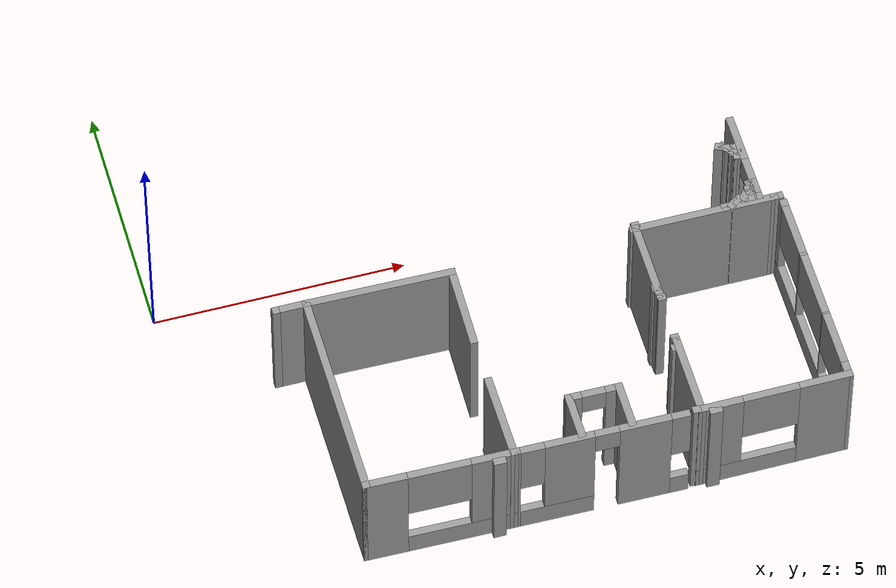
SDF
<sdf version="1.6">
 <model name="draft2">
  <pose>6.97389 -0.64018 0 0 -0 0</pose>
  <link name="Wall_0">
   <collision name="Wall_0_Collision">
    <geometry><box><size>4.40748 0.15 2.5</size></box></geometry>
    <pose>0 0 1.25 0 -0 0</pose>
   </collision>
   <visual name="Wall_0_Visual">
    <pose>0 0 1.25 0 -0 0</pose>
    <geometry><box><size>4.40748 0.15 2.5</size></box></geometry>
    <material>
     <script><uri>file://media/materials/scripts/gazebo.material</uri><name>Gazebo/Grey</name></script>
     <ambient>1 1 1 1</ambient>
    </material>
   </visual>
   <pose>-4.43924 -3.52153 0 0 0 -1.5708</pose>
  </link>
  <link name="Wall_1">
   <collision name="Wall_1_Collision">
    <geometry><box><size>0.15 0.15 2.5</size></box></geometry>
    <pose>0 0 1.25 0 -0 0</pose>
   </collision>
   <visual name="Wall_1_Visual">
    <pose>0 0 1.25 0 -0 0</pose>
    <geometry><box><size>0.15 0.15 2.5</size></box></geometry>
    <material>
     <script><uri>file://media/materials/scripts/gazebo.material</uri><name>Gazebo/Grey</name></script>
     <ambient>1 1 1 1</ambient>
    </material>
   </visual>
   <pose>-4.43924 -5.65027 0 0 -0 0</pose>
  </link>
  <link name="Wall_161">
   <pose>4.53962 -0.402141 0 0 0 -1.5708</pose>
   <visual name="Wall_161_Visual_0">
    <pose>-0.491085 0 1.25 0 -0 0</pose>
    <geometry><box><size>1.01783 0.15 2.5</size></box></geometry>
    <material>
     <script><uri>file://media/materials/scripts/gazebo.material</uri><name>Gazebo/Grey</name></script>
     <ambient>1 1 1 1</ambient>
    </material>
   </visual>
   <collision name="Wall_161_Collision_0">
    <geometry><box><size>1.01783 0.15 2.5</size></box></geometry>
    <pose>-0.491085 0 1.25 0 -0 0</pose>
   </collision>
   <visual name="Wall_161_Visual_1">
    <pose>0.758915 0 1.25 0 -0 0</pose>
    <geometry><box><size>0.482171 0.15 2.5</size></box></geometry>
    <material>
     <script><uri>file://media/materials/scripts/gazebo.material</uri><name>Gazebo/Grey</name></script>
     <ambient>1 1 1 1</ambient>
    </material>
   </visual>
   <collision name="Wall_161_Collision_1">
    <geometry><box><size>0.482171 0.15 2.5</size></box></geometry>
    <pose>0.758915 0 1.25 0 -0 0</pose>
   </collision>
   <visual name="Wall_161_Visual_2">
    <pose>0.267829 0 2.25 0 -0 0</pose>
    <geometry><box><size>0.5 0.15 0.5</size></box></geometry>
    <material>
     <script><uri>file://media/materials/scripts/gazebo.material</uri><name>Gazebo/Grey</name></script>
     <ambient>1 1 1 1</ambient>
    </material>
   </visual>
   <collision name="Wall_161_Collision_2">
    <geometry><box><size>0.5 0.15 0.5</size></box></geometry>
    <pose>0.267829 0 2.25 0 -0 0</pose>
   </collision>
  </link>
  <link name="Wall_181">
   <collision name="Wall_181_Collision">
    <geometry><box><size>2.91441 0.15 2.5</size></box></geometry>
    <pose>0 0 1.25 0 -0 0</pose>
   </collision>
   <visual name="Wall_181_Visual">
    <pose>0 0 1.25 0 -0 0</pose>
    <geometry><box><size>2.91441 0.15 2.5</size></box></geometry>
    <material>
     <script><uri>file://media/materials/scripts/gazebo.material</uri><name>Gazebo/Grey</name></script>
     <ambient>1 1 1 1</ambient>
    </material>
   </visual>
   <pose>3.43915 -1.42355 0 0 0 -0.002132</pose>
  </link>
  <link name="Wall_182">
   <collision name="Wall_182_Collision">
    <geometry><box><size>0.25 0.15 2.5</size></box></geometry>
    <pose>0 0 1.25 0 -0 0</pose>
   </collision>
   <visual name="Wall_182_Visual">
    <pose>0 0 1.25 0 -0 0</pose>
    <geometry><box><size>0.25 0.15 2.5</size></box></geometry>
    <material>
     <script><uri>file://media/materials/scripts/gazebo.material</uri><name>Gazebo/Grey</name></script>
     <ambient>1 1 1 1</ambient>
    </material>
   </visual>
   <pose>4.87133 -1.42649 0 0 -0 0</pose>
  </link>
  <link name="Wall_2">
   <pose>-3.01424 -5.6734 0 0 0 -0.016231</pose>
   <visual name="Wall_2_Visual_0">
    <pose>-1.06421 0 1.25 0 -0 0</pose>
    <geometry><box><size>0.871947 0.15 2.5</size></box></geometry>
    <material>
     <script><uri>file://media/materials/scripts/gazebo.material</uri><name>Gazebo/Grey</name></script>
     <ambient>1 1 1 1</ambient>
    </material>
   </visual>
   <collision name="Wall_2_Collision_0">
    <geometry><box><size>0.871947 0.15 2.5</size></box></geometry>
    <pose>-1.06421 0 1.25 0 -0 0</pose>
   </collision>
   <visual name="Wall_2_Visual_1">
    <pose>0.435973 0 0.25 0 -0 0</pose>
    <geometry><box><size>2.12843 0.15 0.5</size></box></geometry>
    <material>
     <script><uri>file://media/materials/scripts/gazebo.material</uri><name>Gazebo/Grey</name></script>
     <ambient>1 1 1 1</ambient>
    </material>
   </visual>
   <collision name="Wall_2_Collision_1">
    <geometry><box><size>2.12843 0.15 0.5</size></box></geometry>
    <pose>0.435973 0 0.25 0 -0 0</pose>
   </collision>
   <visual name="Wall_2_Visual_2">
    <pose>1.05011 0 1.5 0 -0 0</pose>
    <geometry><box><size>0.900165 0.15 2</size></box></geometry>
    <material>
     <script><uri>file://media/materials/scripts/gazebo.material</uri><name>Gazebo/Grey</name></script>
     <ambient>1 1 1 1</ambient>
    </material>
   </visual>
   <collision name="Wall_2_Collision_2">
    <geometry><box><size>0.900165 0.15 2</size></box></geometry>
    <pose>1.05011 0 1.5 0 -0 0</pose>
   </collision>
   <visual name="Wall_2_Visual_3">
    <pose>-0.014109 0 1.9 0 -0 0</pose>
    <geometry><box><size>1.22826 0.15 1.2</size></box></geometry>
    <material>
     <script><uri>file://media/materials/scripts/gazebo.material</uri><name>Gazebo/Grey</name></script>
     <ambient>1 1 1 1</ambient>
    </material>
   </visual>
   <collision name="Wall_2_Collision_3">
    <geometry><box><size>1.22826 0.15 1.2</size></box></geometry>
    <pose>-0.014109 0 1.9 0 -0 0</pose>
   </collision>
  </link>
  <link name="Wall_200">
   <collision name="Wall_200_Collision">
    <geometry><box><size>0.440291 0.15 2.5</size></box></geometry>
    <pose>0 0 1.25 0 -0 0</pose>
   </collision>
   <visual name="Wall_200_Visual">
    <pose>0 0 1.25 0 -0 0</pose>
    <geometry><box><size>0.440291 0.15 2.5</size></box></geometry>
    <material>
     <script><uri>file://media/materials/scripts/gazebo.material</uri><name>Gazebo/Grey</name></script>
     <ambient>1 1 1 1</ambient>
    </material>
   </visual>
   <pose>4.39461 -1.32899 0 0 0 -3.12884</pose>
  </link>
  <link name="Wall_201">
   <collision name="Wall_201_Collision">
    <geometry><box><size>0.193478 0.15 2.5</size></box></geometry>
    <pose>0 0 1.25 0 -0 0</pose>
   </collision>
   <visual name="Wall_201_Visual">
    <pose>0 0 1.25 0 -0 0</pose>
    <geometry><box><size>0.193478 0.15 2.5</size></box></geometry>
    <material>
     <script><uri>file://media/materials/scripts/gazebo.material</uri><name>Gazebo/Grey</name></script>
     <ambient>1 1 1 1</ambient>
    </material>
   </visual>
   <pose>4.24959 -1.3091 0 0 -0 1.5708</pose>
  </link>
  <link name="Wall_202">
   <collision name="Wall_202_Collision">
    <geometry><box><size>0.266988 0.15 2.5</size></box></geometry>
    <pose>0 0 1.25 0 -0 0</pose>
   </collision>
   <visual name="Wall_202_Visual">
    <pose>0 0 1.25 0 -0 0</pose>
    <geometry><box><size>0.266988 0.15 2.5</size></box></geometry>
    <material>
     <script><uri>file://media/materials/scripts/gazebo.material</uri><name>Gazebo/Grey</name></script>
     <ambient>1 1 1 1</ambient>
    </material>
   </visual>
   <pose>4.28872 -1.24388 0 0 -0 0.837981</pose>
  </link>
  <link name="Wall_203">
   <collision name="Wall_203_Collision">
    <geometry><box><size>0.202894 0.15 2.5</size></box></geometry>
    <pose>0 0 1.25 0 -0 0</pose>
   </collision>
   <visual name="Wall_203_Visual">
    <pose>0 0 1.25 0 -0 0</pose>
    <geometry><box><size>0.202894 0.15 2.5</size></box></geometry>
    <material>
     <script><uri>file://media/materials/scripts/gazebo.material</uri><name>Gazebo/Grey</name></script>
     <ambient>1 1 1 1</ambient>
    </material>
   </visual>
   <pose>4.35394 -1.20475 0 0 0 -0.165149</pose>
  </link>
  <link name="Wall_204">
   <collision name="Wall_204_Collision">
    <geometry><box><size>0.202174 0.15 2.5</size></box></geometry>
    <pose>0 0 1.25 0 -0 0</pose>
   </collision>
   <visual name="Wall_204_Visual">
    <pose>0 0 1.25 0 -0 0</pose>
    <geometry><box><size>0.202174 0.15 2.5</size></box></geometry>
    <material>
     <script><uri>file://media/materials/scripts/gazebo.material</uri><name>Gazebo/Grey</name></script>
     <ambient>1 1 1 1</ambient>
    </material>
   </visual>
   <pose>4.40611 -1.2091 0 0 -0 0</pose>
  </link>
  <link name="Wall_205">
   <collision name="Wall_205_Collision">
    <geometry><box><size>0.245652 0.15 2.5</size></box></geometry>
    <pose>0 0 1.25 0 -0 0</pose>
   </collision>
   <visual name="Wall_205_Visual">
    <pose>0 0 1.25 0 -0 0</pose>
    <geometry><box><size>0.245652 0.15 2.5</size></box></geometry>
    <material>
     <script><uri>file://media/materials/scripts/gazebo.material</uri><name>Gazebo/Grey</name></script>
     <ambient>1 1 1 1</ambient>
    </material>
   </visual>
   <pose>4.4322 -1.16127 0 0 -0 1.5708</pose>
  </link>
  <link name="Wall_206">
   <collision name="Wall_206_Collision">
    <geometry><box><size>0.184783 0.15 2.5</size></box></geometry>
    <pose>0 0 1.25 0 -0 0</pose>
   </collision>
   <visual name="Wall_206_Visual">
    <pose>0 0 1.25 0 -0 0</pose>
    <geometry><box><size>0.184783 0.15 2.5</size></box></geometry>
    <material>
     <script><uri>file://media/materials/scripts/gazebo.material</uri><name>Gazebo/Grey</name></script>
     <ambient>1 1 1 1</ambient>
    </material>
   </visual>
   <pose>4.41481 -1.11345 0 0 -0 3.14159</pose>
  </link>
  <link name="Wall_207">
   <collision name="Wall_207_Collision">
    <geometry><box><size>0.217915 0.15 2.5</size></box></geometry>
    <pose>0 0 1.25 0 -0 0</pose>
   </collision>
   <visual name="Wall_207_Visual">
    <pose>0 0 1.25 0 -0 0</pose>
    <geometry><box><size>0.217915 0.15 2.5</size></box></geometry>
    <material>
     <script><uri>file://media/materials/scripts/gazebo.material</uri><name>Gazebo/Grey</name></script>
     <ambient>1 1 1 1</ambient>
    </material>
   </visual>
   <pose>4.41916 -1.08736 0 0 -0 0.876058</pose>
  </link>
  <link name="Wall_208">
   <collision name="Wall_208_Collision">
    <geometry><box><size>0.21087 0.15 2.5</size></box></geometry>
    <pose>0 0 1.25 0 -0 0</pose>
   </collision>
   <visual name="Wall_208_Visual">
    <pose>0 0 1.25 0 -0 0</pose>
    <geometry><box><size>0.21087 0.15 2.5</size></box></geometry>
    <material>
     <script><uri>file://media/materials/scripts/gazebo.material</uri><name>Gazebo/Grey</name></script>
     <ambient>1 1 1 1</ambient>
    </material>
   </visual>
   <pose>4.4409 -1.03084 0 0 -0 1.5708</pose>
  </link>
  <link name="Wall_210">
   <collision name="Wall_210_Collision">
    <geometry><box><size>0.244058 0.15 2.5</size></box></geometry>
    <pose>0 0 1.25 0 -0 0</pose>
   </collision>
   <visual name="Wall_210_Visual">
    <pose>0 0 1.25 0 -0 0</pose>
    <geometry><box><size>0.244058 0.15 2.5</size></box></geometry>
    <material>
     <script><uri>file://media/materials/scripts/gazebo.material</uri><name>Gazebo/Grey</name></script>
     <ambient>1 1 1 1</ambient>
    </material>
   </visual>
   <pose>4.11481 -1.31345 0 0 0 -2.55359</pose>
  </link>
  <link name="Wall_211">
   <collision name="Wall_211_Collision">
    <geometry><box><size>0.263377 0.15 2.5</size></box></geometry>
    <pose>0 0 1.25 0 -0 0</pose>
   </collision>
   <visual name="Wall_211_Visual">
    <pose>0 0 1.25 0 -0 0</pose>
    <geometry><box><size>0.263377 0.15 2.5</size></box></geometry>
    <material>
     <script><uri>file://media/materials/scripts/gazebo.material</uri><name>Gazebo/Grey</name></script>
     <ambient>1 1 1 1</ambient>
    </material>
   </visual>
   <pose>4.02785 -1.36997 0 0 0 -2.57486</pose>
  </link>
  <link name="Wall_212">
   <collision name="Wall_212_Collision">
    <geometry><box><size>0.28913 0.15 2.5</size></box></geometry>
    <pose>0 0 1.25 0 -0 0</pose>
   </collision>
   <visual name="Wall_212_Visual">
    <pose>0 0 1.25 0 -0 0</pose>
    <geometry><box><size>0.28913 0.15 2.5</size></box></geometry>
    <material>
     <script><uri>file://media/materials/scripts/gazebo.material</uri><name>Gazebo/Grey</name></script>
     <ambient>1 1 1 1</ambient>
    </material>
   </visual>
   <pose>3.91046 -1.4004 0 0 -0 3.14159</pose>
  </link>
  <link name="Wall_215">
   <collision name="Wall_215_Collision">
    <geometry><box><size>0.236957 0.15 2.5</size></box></geometry>
    <pose>0 0 1.25 0 -0 0</pose>
   </collision>
   <visual name="Wall_215_Visual">
    <pose>0 0 1.25 0 -0 0</pose>
    <geometry><box><size>0.236957 0.15 2.5</size></box></geometry>
    <material>
     <script><uri>file://media/materials/scripts/gazebo.material</uri><name>Gazebo/Grey</name></script>
     <ambient>1 1 1 1</ambient>
    </material>
   </visual>
   <pose>4.2409 -0.043883 0 0 0 -0.927295</pose>
  </link>
  <link name="Wall_216">
   <collision name="Wall_216_Collision">
    <geometry><box><size>0.16 0.15 2.5</size></box></geometry>
    <pose>0 0 1.25 0 -0 0</pose>
   </collision>
   <visual name="Wall_216_Visual">
    <pose>0 0 1.25 0 -0 0</pose>
    <geometry><box><size>0.16 0.15 2.5</size></box></geometry>
    <material>
     <script><uri>file://media/materials/scripts/gazebo.material</uri><name>Gazebo/Grey</name></script>
     <ambient>1 1 1 1</ambient>
    </material>
   </visual>
   <pose>4.27198 -0.078666 0 0 -0 0</pose>
  </link>
  <link name="Wall_217">
   <collision name="Wall_217_Collision">
    <geometry><box><size>0.30672 0.15 2.5</size></box></geometry>
    <pose>0 0 1.25 0 -0 0</pose>
   </collision>
   <visual name="Wall_217_Visual">
    <pose>0 0 1.25 0 -0 0</pose>
    <geometry><box><size>0.30672 0.15 2.5</size></box></geometry>
    <material>
     <script><uri>file://media/materials/scripts/gazebo.material</uri><name>Gazebo/Grey</name></script>
     <ambient>1 1 1 1</ambient>
    </material>
   </visual>
   <pose>4.20677 -0.043883 0 0 -0 2.68167</pose>
  </link>
  <link name="Wall_221">
   <collision name="Wall_221_Collision">
    <geometry><box><size>0.186893 0.15 2.5</size></box></geometry>
    <pose>0 0 1.25 0 -0 0</pose>
   </collision>
   <visual name="Wall_221_Visual">
    <pose>0 0 1.25 0 -0 0</pose>
    <geometry><box><size>0.186893 0.15 2.5</size></box></geometry>
    <material>
     <script><uri>file://media/materials/scripts/gazebo.material</uri><name>Gazebo/Grey</name></script>
     <ambient>1 1 1 1</ambient>
    </material>
   </visual>
   <pose>4.3235 -0.152579 0 0 0 -0.785398</pose>
  </link>
  <link name="Wall_222">
   <collision name="Wall_222_Collision">
    <geometry><box><size>0.208332 0.15 2.5</size></box></geometry>
    <pose>0 0 1.25 0 -0 0</pose>
   </collision>
   <visual name="Wall_222_Visual">
    <pose>0 0 1.25 0 -0 0</pose>
    <geometry><box><size>0.208332 0.15 2.5</size></box></geometry>
    <material>
     <script><uri>file://media/materials/scripts/gazebo.material</uri><name>Gazebo/Grey</name></script>
     <ambient>1 1 1 1</ambient>
    </material>
   </visual>
   <pose>4.34959 -0.191709 0 0 0 -1.10715</pose>
  </link>
  <link name="Wall_223">
   <collision name="Wall_223_Collision">
    <geometry><box><size>0.238679 0.15 2.5</size></box></geometry>
    <pose>0 0 1.25 0 -0 0</pose>
   </collision>
   <visual name="Wall_223_Visual">
    <pose>0 0 1.25 0 -0 0</pose>
    <geometry><box><size>0.238679 0.15 2.5</size></box></geometry>
    <material>
     <script><uri>file://media/materials/scripts/gazebo.material</uri><name>Gazebo/Grey</name></script>
     <ambient>1 1 1 1</ambient>
    </material>
   </visual>
   <pose>4.40611 -0.226492 0 0 0 -0.197396</pose>
  </link>
  <link name="Wall_224">
   <collision name="Wall_224_Collision">
    <geometry><box><size>0.232494 0.15 2.5</size></box></geometry>
    <pose>0 0 1.25 0 -0 0</pose>
   </collision>
   <visual name="Wall_224_Visual">
    <pose>0 0 1.25 0 -0 0</pose>
    <geometry><box><size>0.232494 0.15 2.5</size></box></geometry>
    <material>
     <script><uri>file://media/materials/scripts/gazebo.material</uri><name>Gazebo/Grey</name></script>
     <ambient>1 1 1 1</ambient>
    </material>
   </visual>
   <pose>4.43655 -0.274318 0 0 0 -1.89255</pose>
  </link>
  <link name="Wall_225">
   <collision name="Wall_225_Collision">
    <geometry><box><size>0.358877 0.15 2.5</size></box></geometry>
    <pose>0 0 1.25 0 -0 0</pose>
   </collision>
   <visual name="Wall_225_Visual">
    <pose>0 0 1.25 0 -0 0</pose>
    <geometry><box><size>0.358877 0.15 2.5</size></box></geometry>
    <material>
     <script><uri>file://media/materials/scripts/gazebo.material</uri><name>Gazebo/Grey</name></script>
     <ambient>1 1 1 1</ambient>
    </material>
   </visual>
   <pose>4.42785 -0.2091 0 0 -0 1.52915</pose>
  </link>
  <link name="Wall_259">
   <pose>4.95498 -3.6601 0 0 -0 1.5708</pose>
   <visual name="Wall_259_Visual_0">
    <pose>-1.94718 0 1.25 0 -0 0</pose>
    <geometry><box><size>0.355647 0.15 2.5</size></box></geometry>
    <material>
     <script><uri>file://media/materials/scripts/gazebo.material</uri><name>Gazebo/Grey</name></script>
     <ambient>1 1 1 1</ambient>
    </material>
   </visual>
   <collision name="Wall_259_Collision_0">
    <geometry><box><size>0.355647 0.15 2.5</size></box></geometry>
    <pose>-1.94718 0 1.25 0 -0 0</pose>
   </collision>
   <visual name="Wall_259_Visual_1">
    <pose>0.177824 0 0.25 0 -0 0</pose>
    <geometry><box><size>3.89435 0.15 0.5</size></box></geometry>
    <material>
     <script><uri>file://media/materials/scripts/gazebo.material</uri><name>Gazebo/Grey</name></script>
     <ambient>1 1 1 1</ambient>
    </material>
   </visual>
   <collision name="Wall_259_Collision_1">
    <geometry><box><size>3.89435 0.15 0.5</size></box></geometry>
    <pose>0.177824 0 0.25 0 -0 0</pose>
   </collision>
   <visual name="Wall_259_Visual_2">
    <pose>-0.607734 0 1.5 0 -0 0</pose>
    <geometry><box><size>0.035537 0.15 2</size></box></geometry>
    <material>
     <script><uri>file://media/materials/scripts/gazebo.material</uri><name>Gazebo/Grey</name></script>
     <ambient>1 1 1 1</ambient>
    </material>
   </visual>
   <collision name="Wall_259_Collision_2">
    <geometry><box><size>0.035537 0.15 2</size></box></geometry>
    <pose>-0.607734 0 1.5 0 -0 0</pose>
   </collision>
   <visual name="Wall_259_Visual_3">
    <pose>0.804784 0 1.5 0 -0 0</pose>
    <geometry><box><size>0.0625 0.15 2</size></box></geometry>
    <material>
     <script><uri>file://media/materials/scripts/gazebo.material</uri><name>Gazebo/Grey</name></script>
     <ambient>1 1 1 1</ambient>
    </material>
   </visual>
   <collision name="Wall_259_Collision_3">
    <geometry><box><size>0.0625 0.15 2</size></box></geometry>
    <pose>0.804784 0 1.5 0 -0 0</pose>
   </collision>
   <visual name="Wall_259_Visual_4">
    <pose>2.04152 0 1.5 0 -0 0</pose>
    <geometry><box><size>0.166966 0.15 2</size></box></geometry>
    <material>
     <script><uri>file://media/materials/scripts/gazebo.material</uri><name>Gazebo/Grey</name></script>
     <ambient>1 1 1 1</ambient>
    </material>
   </visual>
   <collision name="Wall_259_Collision_4">
    <geometry><box><size>0.166966 0.15 2</size></box></geometry>
    <pose>2.04152 0 1.5 0 -0 0</pose>
   </collision>
   <visual name="Wall_259_Visual_5">
    <pose>-1.19743 0 1.9 0 -0 0</pose>
    <geometry><box><size>1.14385 0.15 1.2</size></box></geometry>
    <material>
     <script><uri>file://media/materials/scripts/gazebo.material</uri><name>Gazebo/Grey</name></script>
     <ambient>1 1 1 1</ambient>
    </material>
   </visual>
   <collision name="Wall_259_Collision_5">
    <geometry><box><size>1.14385 0.15 1.2</size></box></geometry>
    <pose>-1.19743 0 1.9 0 -0 0</pose>
   </collision>
   <visual name="Wall_259_Visual_6">
    <pose>0.091784 0 1.9 0 -0 0</pose>
    <geometry><box><size>1.3635 0.15 1.2</size></box></geometry>
    <material>
     <script><uri>file://media/materials/scripts/gazebo.material</uri><name>Gazebo/Grey</name></script>
     <ambient>1 1 1 1</ambient>
    </material>
   </visual>
   <collision name="Wall_259_Collision_6">
    <geometry><box><size>1.3635 0.15 1.2</size></box></geometry>
    <pose>0.091784 0 1.9 0 -0 0</pose>
   </collision>
   <visual name="Wall_259_Visual_7">
    <pose>1.39703 0 1.9 0 -0 0</pose>
    <geometry><box><size>1.122 0.15 1.2</size></box></geometry>
    <material>
     <script><uri>file://media/materials/scripts/gazebo.material</uri><name>Gazebo/Grey</name></script>
     <ambient>1 1 1 1</ambient>
    </material>
   </visual>
   <collision name="Wall_259_Collision_7">
    <geometry><box><size>1.122 0.15 1.2</size></box></geometry>
    <pose>1.39703 0 1.9 0 -0 0</pose>
   </collision>
  </link>
  <link name="Wall_261">
   <pose>3.50698 -5.71585 0 0 0 -3.13762</pose>
   <visual name="Wall_261_Visual_0">
    <pose>-0.997588 0 1.25 0 -0 0</pose>
    <geometry><box><size>1.05085 0.15 2.5</size></box></geometry>
    <material>
     <script><uri>file://media/materials/scripts/gazebo.material</uri><name>Gazebo/Grey</name></script>
     <ambient>1 1 1 1</ambient>
    </material>
   </visual>
   <collision name="Wall_261_Collision_0">
    <geometry><box><size>1.05085 0.15 2.5</size></box></geometry>
    <pose>-0.997588 0 1.25 0 -0 0</pose>
   </collision>
   <visual name="Wall_261_Visual_1">
    <pose>0.525423 0 0.25 0 -0 0</pose>
    <geometry><box><size>1.99518 0.15 0.5</size></box></geometry>
    <material>
     <script><uri>file://media/materials/scripts/gazebo.material</uri><name>Gazebo/Grey</name></script>
     <ambient>1 1 1 1</ambient>
    </material>
   </visual>
   <collision name="Wall_261_Collision_1">
    <geometry><box><size>1.99518 0.15 0.5</size></box></geometry>
    <pose>0.525423 0 0.25 0 -0 0</pose>
   </collision>
   <visual name="Wall_261_Visual_2">
    <pose>1.07837 0 1.5 0 -0 0</pose>
    <geometry><box><size>0.889276 0.15 2</size></box></geometry>
    <material>
     <script><uri>file://media/materials/scripts/gazebo.material</uri><name>Gazebo/Grey</name></script>
     <ambient>1 1 1 1</ambient>
    </material>
   </visual>
   <collision name="Wall_261_Collision_2">
    <geometry><box><size>0.889276 0.15 2</size></box></geometry>
    <pose>1.07837 0 1.5 0 -0 0</pose>
   </collision>
   <visual name="Wall_261_Visual_3">
    <pose>0.080785 0 1.9 0 -0 0</pose>
    <geometry><box><size>1.1059 0.15 1.2</size></box></geometry>
    <material>
     <script><uri>file://media/materials/scripts/gazebo.material</uri><name>Gazebo/Grey</name></script>
     <ambient>1 1 1 1</ambient>
    </material>
   </visual>
   <collision name="Wall_261_Collision_3">
    <geometry><box><size>1.1059 0.15 1.2</size></box></geometry>
    <pose>0.080785 0 1.9 0 -0 0</pose>
   </collision>
  </link>
  <link name="Wall_262">
   <collision name="Wall_262_Collision">
    <geometry><box><size>1.75 0.15 2.5</size></box></geometry>
    <pose>0 0 1.25 0 -0 0</pose>
   </collision>
   <visual name="Wall_262_Visual">
    <pose>0 0 1.25 0 -0 0</pose>
    <geometry><box><size>1.75 0.15 2.5</size></box></geometry>
    <material>
     <script><uri>file://media/materials/scripts/gazebo.material</uri><name>Gazebo/Grey</name></script>
     <ambient>1 1 1 1</ambient>
    </material>
   </visual>
   <pose>2.05898 -4.9216 0 0 -0 1.5708</pose>
  </link>
  <link name="Wall_265">
   <collision name="Wall_265_Collision">
    <geometry><box><size>1.75 0.15 2.5</size></box></geometry>
    <pose>0 0 1.25 0 -0 0</pose>
   </collision>
   <visual name="Wall_265_Visual">
    <pose>0 0 1.25 0 -0 0</pose>
    <geometry><box><size>1.75 0.15 2.5</size></box></geometry>
    <material>
     <script><uri>file://media/materials/scripts/gazebo.material</uri><name>Gazebo/Grey</name></script>
     <ambient>1 1 1 1</ambient>
    </material>
   </visual>
   <pose>2.05697 -2.2206 0 0 0 -1.5708</pose>
  </link>
  <link name="Wall_267">
   <collision name="Wall_267_Collision">
    <geometry><box><size>0.16 0.15 2.5</size></box></geometry>
    <pose>0 0 1.25 0 -0 0</pose>
   </collision>
   <visual name="Wall_267_Visual">
    <pose>0 0 1.25 0 -0 0</pose>
    <geometry><box><size>0.16 0.15 2.5</size></box></geometry>
    <material>
     <script><uri>file://media/materials/scripts/gazebo.material</uri><name>Gazebo/Grey</name></script>
     <ambient>1 1 1 1</ambient>
    </material>
   </visual>
   <pose>2.07348 -1.3516 0 0 -0 0</pose>
  </link>
  <link name="Wall_269">
   <collision name="Wall_269_Collision">
    <geometry><box><size>0.16 0.15 2.5</size></box></geometry>
    <pose>0 0 1.25 0 -0 0</pose>
   </collision>
   <visual name="Wall_269_Visual">
    <pose>0 0 1.25 0 -0 0</pose>
    <geometry><box><size>0.16 0.15 2.5</size></box></geometry>
    <material>
     <script><uri>file://media/materials/scripts/gazebo.material</uri><name>Gazebo/Grey</name></script>
     <ambient>1 1 1 1</ambient>
    </material>
   </visual>
   <pose>2.01598 -1.4321 0 0 -0 0</pose>
  </link>
  <link name="Wall_271">
   <collision name="Wall_271_Collision">
    <geometry><box><size>0.16 0.15 2.5</size></box></geometry>
    <pose>0 0 1.25 0 -0 0</pose>
   </collision>
   <visual name="Wall_271_Visual">
    <pose>0 0 1.25 0 -0 0</pose>
    <geometry><box><size>0.16 0.15 2.5</size></box></geometry>
    <material>
     <script><uri>file://media/materials/scripts/gazebo.material</uri><name>Gazebo/Grey</name></script>
     <ambient>1 1 1 1</ambient>
    </material>
   </visual>
   <pose>2.02747 -2.8466 0 0 -0 0</pose>
  </link>
  <link name="Wall_273">
   <collision name="Wall_273_Collision">
    <geometry><box><size>0.16 0.15 2.5</size></box></geometry>
    <pose>0 0 1.25 0 -0 0</pose>
   </collision>
   <visual name="Wall_273_Visual">
    <pose>0 0 1.25 0 -0 0</pose>
    <geometry><box><size>0.16 0.15 2.5</size></box></geometry>
    <material>
     <script><uri>file://media/materials/scripts/gazebo.material</uri><name>Gazebo/Grey</name></script>
     <ambient>1 1 1 1</ambient>
    </material>
   </visual>
   <pose>2.07348 -3.0766 0 0 -0 0</pose>
  </link>
  <link name="Wall_275">
   <collision name="Wall_275_Collision">
    <geometry><box><size>0.16 0.15 2.5</size></box></geometry>
    <pose>0 0 1.25 0 -0 0</pose>
   </collision>
   <visual name="Wall_275_Visual">
    <pose>0 0 1.25 0 -0 0</pose>
    <geometry><box><size>0.16 0.15 2.5</size></box></geometry>
    <material>
     <script><uri>file://media/materials/scripts/gazebo.material</uri><name>Gazebo/Grey</name></script>
     <ambient>1 1 1 1</ambient>
    </material>
   </visual>
   <pose>2.05048 -4.0311 0 0 -0 0</pose>
  </link>
  <link name="Wall_277">
   <collision name="Wall_277_Collision">
    <geometry><box><size>0.16 0.15 2.5</size></box></geometry>
    <pose>0 0 1.25 0 -0 0</pose>
   </collision>
   <visual name="Wall_277_Visual">
    <pose>0 0 1.25 0 -0 0</pose>
    <geometry><box><size>0.16 0.15 2.5</size></box></geometry>
    <material>
     <script><uri>file://media/materials/scripts/gazebo.material</uri><name>Gazebo/Grey</name></script>
     <ambient>1 1 1 1</ambient>
    </material>
   </visual>
   <pose>1.99297 -4.2496 0 0 -0 0</pose>
  </link>
  <link name="Wall_281">
   <collision name="Wall_281_Collision">
    <geometry><box><size>0.16 0.15 2.5</size></box></geometry>
    <pose>0 0 1.25 0 -0 0</pose>
   </collision>
   <visual name="Wall_281_Visual">
    <pose>0 0 1.25 0 -0 0</pose>
    <geometry><box><size>0.16 0.15 2.5</size></box></geometry>
    <material>
     <script><uri>file://media/materials/scripts/gazebo.material</uri><name>Gazebo/Grey</name></script>
     <ambient>1 1 1 1</ambient>
    </material>
   </visual>
   <pose>1.96998 -5.7101 0 0 -0 0</pose>
  </link>
  <link name="Wall_283">
   <collision name="Wall_283_Collision">
    <geometry><box><size>0.25 0.15 2.5</size></box></geometry>
    <pose>0 0 1.25 0 -0 0</pose>
   </collision>
   <visual name="Wall_283_Visual">
    <pose>0 0 1.25 0 -0 0</pose>
    <geometry><box><size>0.25 0.15 2.5</size></box></geometry>
    <material>
     <script><uri>file://media/materials/scripts/gazebo.material</uri><name>Gazebo/Grey</name></script>
     <ambient>1 1 1 1</ambient>
    </material>
   </visual>
   <pose>2.31398 -5.8136 0 0 -0 0</pose>
  </link>
  <link name="Wall_285">
   <collision name="Wall_285_Collision">
    <geometry><box><size>0.25 0.15 2.5</size></box></geometry>
    <pose>0 0 1.25 0 -0 0</pose>
   </collision>
   <visual name="Wall_285_Visual">
    <pose>0 0 1.25 0 -0 0</pose>
    <geometry><box><size>0.25 0.15 2.5</size></box></geometry>
    <material>
     <script><uri>file://media/materials/scripts/gazebo.material</uri><name>Gazebo/Grey</name></script>
     <ambient>1 1 1 1</ambient>
    </material>
   </visual>
   <pose>-1.89502 -5.8136 0 0 -0 0</pose>
  </link>
  <link name="Wall_287">
   <pose>0.085761 -5.71966 0 0 0 -0.013808</pose>
   <visual name="Wall_287_Visual_0">
    <pose>-1.65135 0 1.25 0 -0 0</pose>
    <geometry><box><size>0.198027 0.15 2.5</size></box></geometry>
    <material>
     <script><uri>file://media/materials/scripts/gazebo.material</uri><name>Gazebo/Grey</name></script>
     <ambient>1 1 1 1</ambient>
    </material>
   </visual>
   <collision name="Wall_287_Collision_0">
    <geometry><box><size>0.198027 0.15 2.5</size></box></geometry>
    <pose>-1.65135 0 1.25 0 -0 0</pose>
   </collision>
   <visual name="Wall_287_Visual_1">
    <pose>0.876463 0 1.25 0 -0 0</pose>
    <geometry><box><size>1.01486 0.15 2.5</size></box></geometry>
    <material>
     <script><uri>file://media/materials/scripts/gazebo.material</uri><name>Gazebo/Grey</name></script>
     <ambient>1 1 1 1</ambient>
    </material>
   </visual>
   <collision name="Wall_287_Collision_1">
    <geometry><box><size>1.01486 0.15 2.5</size></box></geometry>
    <pose>0.876463 0 1.25 0 -0 0</pose>
   </collision>
   <visual name="Wall_287_Visual_2">
    <pose>-0.83005 0 0.25 0 -0 0</pose>
    <geometry><box><size>1.44456 0.15 0.5</size></box></geometry>
    <material>
     <script><uri>file://media/materials/scripts/gazebo.material</uri><name>Gazebo/Grey</name></script>
     <ambient>1 1 1 1</ambient>
    </material>
   </visual>
   <collision name="Wall_287_Collision_2">
    <geometry><box><size>1.44456 0.15 0.5</size></box></geometry>
    <pose>-0.83005 0 0.25 0 -0 0</pose>
   </collision>
   <visual name="Wall_287_Visual_3">
    <pose>1.56713 0 0.25 0 -0 0</pose>
    <geometry><box><size>0.366464 0.15 0.5</size></box></geometry>
    <material>
     <script><uri>file://media/materials/scripts/gazebo.material</uri><name>Gazebo/Grey</name></script>
     <ambient>1 1 1 1</ambient>
    </material>
   </visual>
   <collision name="Wall_287_Collision_3">
    <geometry><box><size>0.366464 0.15 0.5</size></box></geometry>
    <pose>1.56713 0 0.25 0 -0 0</pose>
   </collision>
   <visual name="Wall_287_Visual_4">
    <pose>-0.595363 0 1.5 0 -0 0</pose>
    <geometry><box><size>0.975188 0.15 2</size></box></geometry>
    <material>
     <script><uri>file://media/materials/scripts/gazebo.material</uri><name>Gazebo/Grey</name></script>
     <ambient>1 1 1 1</ambient>
    </material>
   </visual>
   <collision name="Wall_287_Collision_4">
    <geometry><box><size>0.975188 0.15 2</size></box></geometry>
    <pose>-0.595363 0 1.5 0 -0 0</pose>
   </collision>
   <visual name="Wall_287_Visual_5">
    <pose>-0.595363 0 1.5 0 -0 0</pose>
    <geometry><box><size>0.975188 0.15 2</size></box></geometry>
    <material>
     <script><uri>file://media/materials/scripts/gazebo.material</uri><name>Gazebo/Grey</name></script>
     <ambient>1 1 1 1</ambient>
    </material>
   </visual>
   <collision name="Wall_287_Collision_5">
    <geometry><box><size>0.975188 0.15 2</size></box></geometry>
    <pose>-0.595363 0 1.5 0 -0 0</pose>
   </collision>
   <visual name="Wall_287_Visual_6">
    <pose>-1.31764 0 1.9 0 -0 0</pose>
    <geometry><box><size>0.469375 0.15 1.2</size></box></geometry>
    <material>
     <script><uri>file://media/materials/scripts/gazebo.material</uri><name>Gazebo/Grey</name></script>
     <ambient>1 1 1 1</ambient>
    </material>
   </visual>
   <collision name="Wall_287_Collision_6">
    <geometry><box><size>0.469375 0.15 1.2</size></box></geometry>
    <pose>-1.31764 0 1.9 0 -0 0</pose>
   </collision>
   <visual name="Wall_287_Visual_7">
    <pose>1.56713 0 1.9 0 -0 0</pose>
    <geometry><box><size>0.366464 0.15 1.2</size></box></geometry>
    <material>
     <script><uri>file://media/materials/scripts/gazebo.material</uri><name>Gazebo/Grey</name></script>
     <ambient>1 1 1 1</ambient>
    </material>
   </visual>
   <collision name="Wall_287_Collision_7">
    <geometry><box><size>0.366464 0.15 1.2</size></box></geometry>
    <pose>1.56713 0 1.9 0 -0 0</pose>
   </collision>
   <visual name="Wall_287_Visual_8">
    <pose>0.130631 0 2.25 0 -0 0</pose>
    <geometry><box><size>0.4768 0.15 0.5</size></box></geometry>
    <material>
     <script><uri>file://media/materials/scripts/gazebo.material</uri><name>Gazebo/Grey</name></script>
     <ambient>1 1 1 1</ambient>
    </material>
   </visual>
   <collision name="Wall_287_Collision_8">
    <geometry><box><size>0.4768 0.15 0.5</size></box></geometry>
    <pose>0.130631 0 2.25 0 -0 0</pose>
   </collision>
   <visual name="Wall_287_Visual_9">
    <pose>0.130631 0 2.25 0 -0 0</pose>
    <geometry><box><size>0.4768 0.15 0.5</size></box></geometry>
    <material>
     <script><uri>file://media/materials/scripts/gazebo.material</uri><name>Gazebo/Grey</name></script>
     <ambient>1 1 1 1</ambient>
    </material>
   </visual>
   <collision name="Wall_287_Collision_9">
    <geometry><box><size>0.4768 0.15 0.5</size></box></geometry>
    <pose>0.130631 0 2.25 0 -0 0</pose>
   </collision>
  </link>
  <link name="Wall_289">
   <collision name="Wall_289_Collision">
    <geometry><box><size>1 0.15 2.5</size></box></geometry>
    <pose>0 0 1.25 0 -0 0</pose>
   </collision>
   <visual name="Wall_289_Visual">
    <pose>0 0 1.25 0 -0 0</pose>
    <geometry><box><size>1 0.15 2.5</size></box></geometry>
    <material>
     <script><uri>file://media/materials/scripts/gazebo.material</uri><name>Gazebo/Grey</name></script>
     <ambient>1 1 1 1</ambient>
    </material>
   </visual>
   <pose>-0.25972 -5.22664 0 0 0 -1.5708</pose>
  </link>
  <link name="Wall_291">
   <collision name="Wall_291_Collision">
    <geometry><box><size>1 0.15 2.5</size></box></geometry>
    <pose>0 0 1.25 0 -0 0</pose>
   </collision>
   <visual name="Wall_291_Visual">
    <pose>0 0 1.25 0 -0 0</pose>
    <geometry><box><size>1 0.15 2.5</size></box></geometry>
    <material>
     <script><uri>file://media/materials/scripts/gazebo.material</uri><name>Gazebo/Grey</name></script>
     <ambient>1 1 1 1</ambient>
    </material>
   </visual>
   <pose>0.71893 -5.23987 0 0 0 -1.5708</pose>
  </link>
  <link name="Wall_293">
   <pose>0.229605 -4.80825 0 0 0 -0.013513</pose>
   <visual name="Wall_293_Visual_0">
    <pose>-0.404835 0 1.25 0 -0 0</pose>
    <geometry><box><size>0.31907 0.15 2.5</size></box></geometry>
    <material>
     <script><uri>file://media/materials/scripts/gazebo.material</uri><name>Gazebo/Grey</name></script>
     <ambient>1 1 1 1</ambient>
    </material>
   </visual>
   <collision name="Wall_293_Collision_0">
    <geometry><box><size>0.31907 0.15 2.5</size></box></geometry>
    <pose>-0.404835 0 1.25 0 -0 0</pose>
   </collision>
   <visual name="Wall_293_Visual_1">
    <pose>0.390985 0 1.25 0 -0 0</pose>
    <geometry><box><size>0.346769 0.15 2.5</size></box></geometry>
    <material>
     <script><uri>file://media/materials/scripts/gazebo.material</uri><name>Gazebo/Grey</name></script>
     <ambient>1 1 1 1</ambient>
    </material>
   </visual>
   <collision name="Wall_293_Collision_1">
    <geometry><box><size>0.346769 0.15 2.5</size></box></geometry>
    <pose>0.390985 0 1.25 0 -0 0</pose>
   </collision>
   <visual name="Wall_293_Visual_2">
    <pose>-0.01385 0 2.25 0 -0 0</pose>
    <geometry><box><size>0.4629 0.15 0.5</size></box></geometry>
    <material>
     <script><uri>file://media/materials/scripts/gazebo.material</uri><name>Gazebo/Grey</name></script>
     <ambient>1 1 1 1</ambient>
    </material>
   </visual>
   <collision name="Wall_293_Collision_2">
    <geometry><box><size>0.4629 0.15 0.5</size></box></geometry>
    <pose>-0.01385 0 2.25 0 -0 0</pose>
   </collision>
  </link>
  <link name="Wall_308">
   <collision name="Wall_308_Collision">
    <geometry><box><size>1.77209 0.15 2.5</size></box></geometry>
    <pose>0 0 1.25 0 -0 0</pose>
   </collision>
   <visual name="Wall_308_Visual">
    <pose>0 0 1.25 0 -0 0</pose>
    <geometry><box><size>1.77209 0.15 2.5</size></box></geometry>
    <material>
     <script><uri>file://media/materials/scripts/gazebo.material</uri><name>Gazebo/Grey</name></script>
     <ambient>1 1 1 1</ambient>
    </material>
   </visual>
   <pose>-1.60706 -2.2499 0 0 -0 1.54883</pose>
  </link>
  <link name="Wall_310">
   <collision name="Wall_310_Collision">
    <geometry><box><size>1.81434 0.15 2.5</size></box></geometry>
    <pose>0 0 1.25 0 -0 0</pose>
   </collision>
   <visual name="Wall_310_Visual">
    <pose>0 0 1.25 0 -0 0</pose>
    <geometry><box><size>1.81434 0.15 2.5</size></box></geometry>
    <material>
     <script><uri>file://media/materials/scripts/gazebo.material</uri><name>Gazebo/Grey</name></script>
     <ambient>1 1 1 1</ambient>
    </material>
   </visual>
   <pose>-1.59549 -4.86439 0 0 0 -1.56328</pose>
  </link>
  <link name="Wall_4">
   <collision name="Wall_4_Collision">
    <geometry><box><size>3.00038 0.15 2.5</size></box></geometry>
    <pose>0 0 1.25 0 -0 0</pose>
   </collision>
   <visual name="Wall_4_Visual">
    <pose>0 0 1.25 0 -0 0</pose>
    <geometry><box><size>3.00038 0.15 2.5</size></box></geometry>
    <material>
     <script><uri>file://media/materials/scripts/gazebo.material</uri><name>Gazebo/Grey</name></script>
     <ambient>1 1 1 1</ambient>
    </material>
   </visual>
   <pose>-3.01424 -1.41592 0 0 -0 3.12536</pose>
  </link>
  <link name="Wall_5">
   <collision name="Wall_5_Collision">
    <geometry><box><size>0.75 0.15 2.5</size></box></geometry>
    <pose>0 0 1.25 0 -0 0</pose>
   </collision>
   <visual name="Wall_5_Visual">
    <pose>0 0 1.25 0 -0 0</pose>
    <geometry><box><size>0.75 0.15 2.5</size></box></geometry>
    <material>
     <script><uri>file://media/materials/scripts/gazebo.material</uri><name>Gazebo/Grey</name></script>
     <ambient>1 1 1 1</ambient>
    </material>
   </visual>
   <pose>-4.73924 -1.39279 0 0 -0 3.14159</pose>
  </link>
  <link name="Wall_6">
   <collision name="Wall_6_Collision">
    <geometry><box><size>0.15 0.15 2.5</size></box></geometry>
    <pose>0 0 1.25 0 -0 0</pose>
   </collision>
   <visual name="Wall_6_Visual">
    <pose>0 0 1.25 0 -0 0</pose>
    <geometry><box><size>0.15 0.15 2.5</size></box></geometry>
    <material>
     <script><uri>file://media/materials/scripts/gazebo.material</uri><name>Gazebo/Grey</name></script>
     <ambient>1 1 1 1</ambient>
    </material>
   </visual>
   <pose>-5.03924 -1.39279 0 0 -0 0</pose>
  </link>
  <static>1</static>
 </model>
</sdf>
